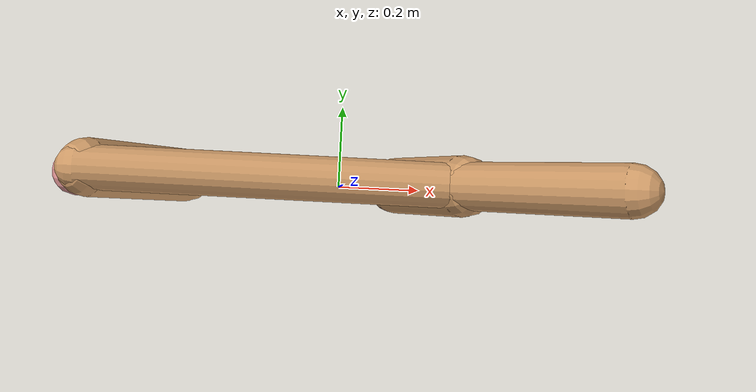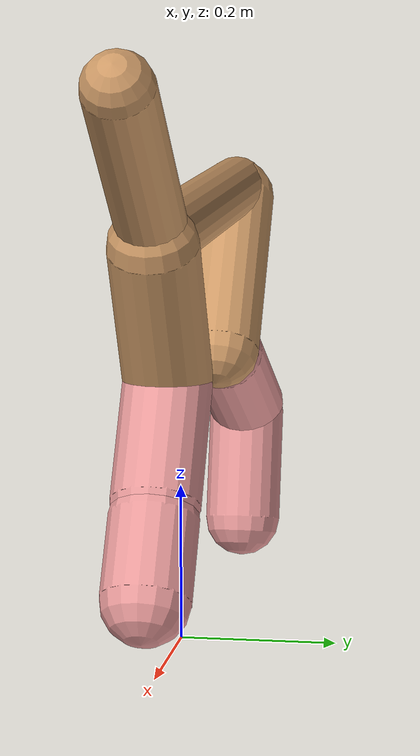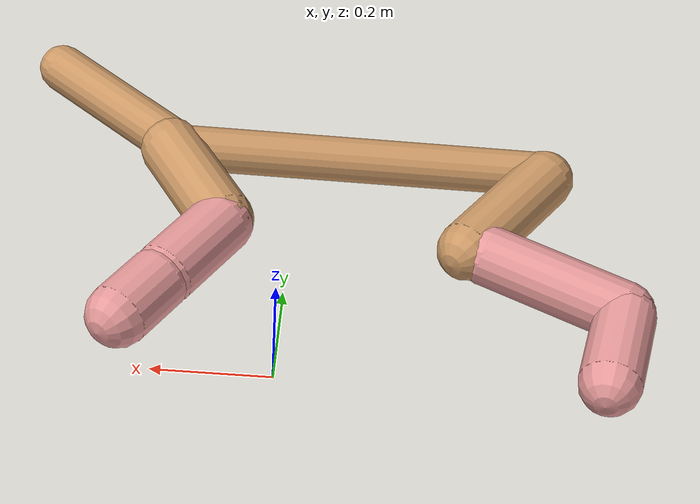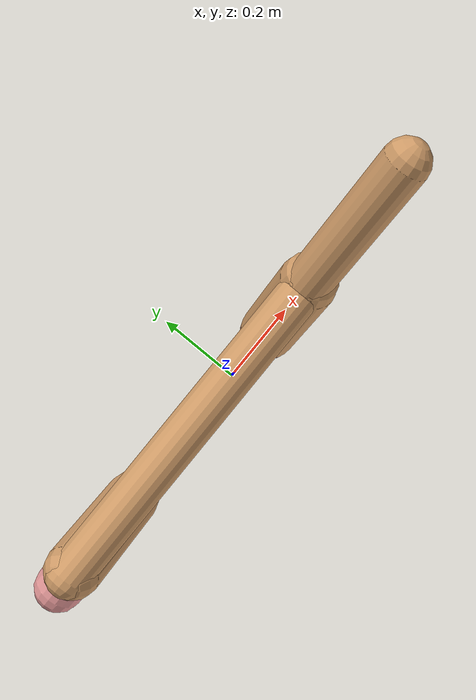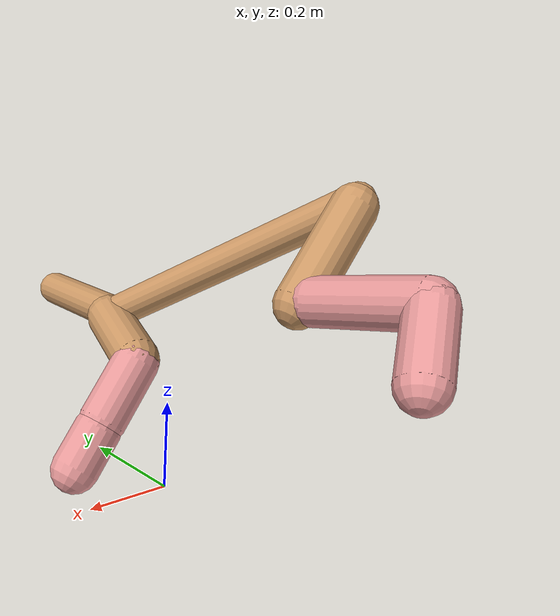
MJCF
<mujoco model="cheetah">
  <compiler angle="radian" coordinate="local" inertiafromgeom="true" settotalmass="14" />
  <default>
    <joint armature=".1" damping=".01" limited="true" solimplimit="0 .8 .03" solreflimit=".02 1" stiffness="8" />
    <geom conaffinity="0" condim="3" contype="1" friction="0.8 .1 .1" rgba="0.8 0.6 .4 1" solimp="0.0 0.8 0.01" solref="0.02 1" />
    <motor ctrllimited="true" ctrlrange="-1 1" />
  </default>
  <size nstack="300000" nuser_geom="1" />
  <option gravity="0 0 -9.81" timestep="0.01" />
  <worldbody>
    <body name="torso" pos="0.0 0.0 0.5361348997197206">
      <joint armature="0" axis="1 0 0" damping="0" limited="false" name="ignorex" pos="0 0 0" stiffness="0" type="slide" />
      <joint armature="0" axis="0 0 1" damping="0" limited="false" name="ignorez" pos="0 0 0" stiffness="0" type="slide" />
      <joint armature="0" axis="0 1 0" damping="0" limited="false" name="ignorey" pos="0 0 0" stiffness="0" type="hinge" />
      <geom fromto="-0.5 0.0 0.0 0.20131445096369482 0.0 0.0" name="torso" size="0.04128443192631281" type="capsule" />
      <geom axisangle="0 1 0 .87" name="head" pos="0.3013144509636948 0.0 0.1" size="0.04376084576969623 0.15" type="capsule" />

      <body name="bthigh" pos="-.5 0 0">
        <joint axis="0 1 0" damping="6" name="bthigh" pos="0 0 0" range="-.52 1.05" stiffness="240" type="hinge" />
        <geom axisangle="0 1 0 -3.8" name="bthigh" pos="0.08772288502504488 0.0 -0.11403975053255835" size="0.05459707587974579 0.12486403428759278" type="capsule" />
        <body name="bshin" pos="0.13544577005008976 0.0 -0.2180795010651167">
          <joint axis="0 1 0" damping="4.5" name="bshin" pos="0 0 0" range="-.785 .785" stiffness="180" type="hinge" />
          <geom axisangle="0 1 0 -2.03" name="bshin" pos="-0.12136880491356657 0.0 -0.06068440245678328" rgba="0.9 0.6 0.6 1" size="0.05459707587974579 0.12916969064233738" type="capsule" />
          <body name="bfoot" pos="-0.24273760982713313 0.0 -0.12136880491356657">
            <joint axis="0 1 0" damping="3" name="bfoot" pos="0 0 0" range="-.4 .785" stiffness="120" type="hinge" />
            <geom axisangle="0 1 0 -.27" name="bfoot" pos="0.026143038539845224 0.0 -0.08452915794549958" rgba="0.9 0.6 0.6 1" size="0.05459707587974579 0.08094633946919809" type="capsule" />
            <inertial mass="10" />
          </body>
        </body>
      </body>
      <body name="fthigh" pos="0.20131445096369482 0.0 0.0">
        <joint axis="0 1 0" damping="4.5" name="fthigh" pos="0 0 0" range="-1.5 0.8" stiffness="180" type="hinge" />
        <geom axisangle="0 1 0 .52" name="fthigh" pos="-0.05380440200626177 0.0 -0.09223611772502018" size="0.05634347202907112 0.10085765171376372" type="capsule" />
        <body name="fshin" pos="-0.10760880401252354 0.0 -0.18447223545004035">
          <joint axis="0 1 0" damping="3" name="fshin" pos="0 0 0" range="-1.2 1.1" stiffness="120" type="hinge" />
          <geom axisangle="0 1 0 -.6" name="fshin" pos="0.05000136558047763 0.0 -0.06923266003450748" rgba="0.9 0.6 0.6 1" size="0.05634347202907112 0.0803827900876613" type="capsule" />
          <body name="ffoot" pos="0.10000273116095526 0.0 -0.13846532006901496">
            <joint axis="0 1 0" damping="1.5" name="ffoot" pos="0 0 0" range="-3.1 -0.3" stiffness="60" type="hinge" />
            <geom axisangle="0 1 0 -.6" name="ffoot" pos="0.03585199008503963 0.0 -0.0557697623545061" rgba="0.9 0.6 0.6 1" size="0.05634347202907112 0.053082974586191434" type="capsule" />
            <inertial mass="10" />
          </body>
        </body>
      </body>
    </body>
  </worldbody>
  <actuator>
    <motor gear="120" joint="bthigh" name="bthigh" />
    <motor gear="90" joint="bshin" name="bshin" />
    <motor gear="60" joint="bfoot" name="bfoot" />
    <motor gear="120" joint="fthigh" name="fthigh" />
    <motor gear="60" joint="fshin" name="fshin" />
    <motor gear="30" joint="ffoot" name="ffoot" />
  </actuator>
</mujoco>
